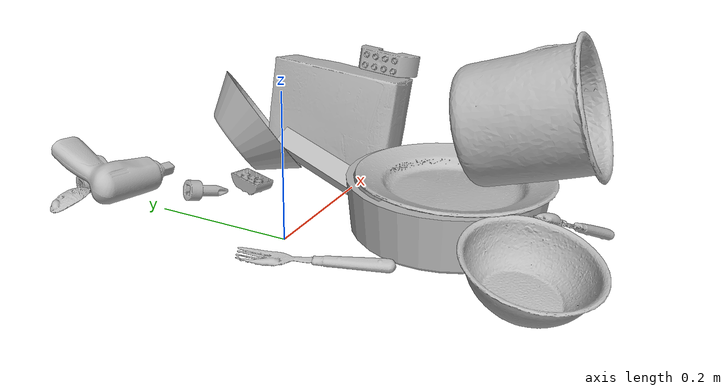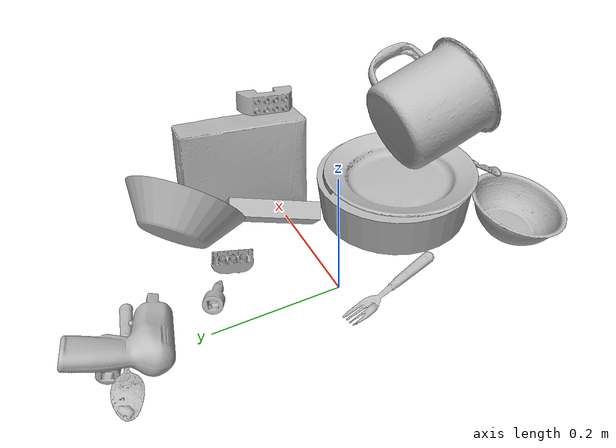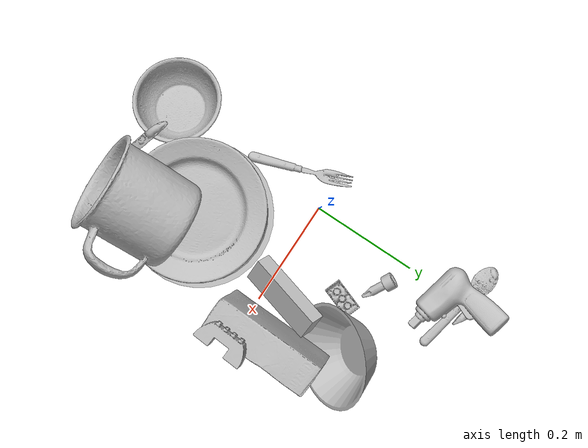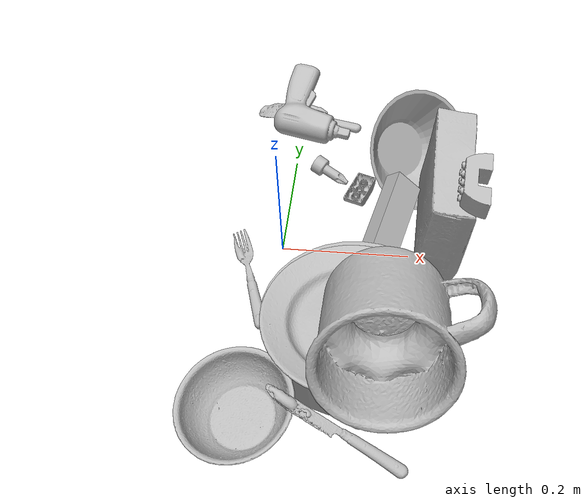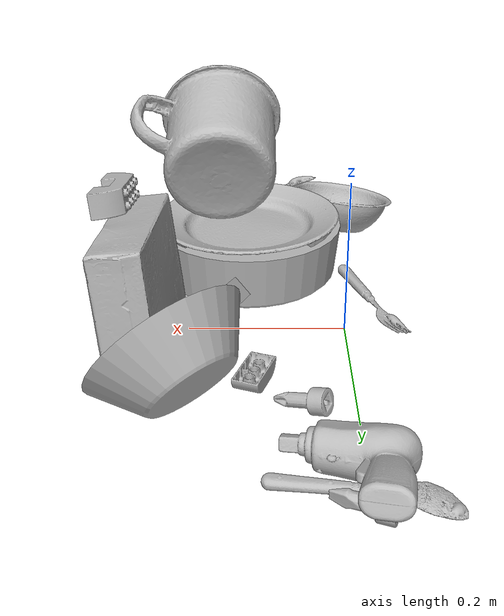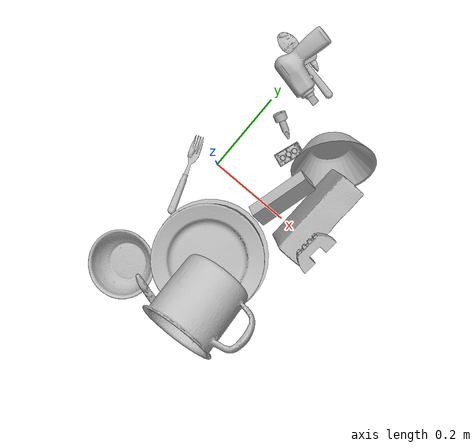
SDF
<sdf version="1.4">
  <world name="default">
    <light name="light1" type="point">
      <pose>0 0 1 0 0 0</pose>
      <diffuse>3 3 3 1</diffuse>
      <specular>3 3 3 1</specular>
    </light>
    <light name="light2" type="point">
      <pose>0 0.5 2 0 0 0</pose>
      <diffuse>1 1 1 1</diffuse>
      <specular>1 1 1 1</specular>
    </light>
    <light name="light3" type="point">
      <pose>0 0.5 2 0 0 0</pose>
      <diffuse>3 3 3 1</diffuse>
      <specular>3 3 3 1</specular>
    </light>
    <scene>
      <ambient>0.7 0.7 0.7</ambient>
    </scene>
    <model name="plate1">
      <link name="link_plate1">
        <collision name="default">
          <geometry>
            <mesh>
              <uri>model://plate/collision_meshes/collision.obj</uri>
              <scale>1.0 1.0 1.0</scale>
            </mesh>
          </geometry>
          <surface>
            <friction>
              <ode>
                <mu>0.5</mu>
                <mu2>0.5</mu2>
              </ode>
            </friction>
          <contact>
        <ode>
            <max_vel>0</max_vel>
            <min_depth>0.0001</min_depth>
            <kp>1e8</kp>
        </ode>
    </contact></surface>
        </collision>
        <visual name="default">
          <geometry>
            <mesh>
              <uri>model://plate/visual_meshes/visual.dae</uri>
              <scale>1.0 1.0 1.0</scale>
            </mesh>
          </geometry>
        </visual>
        <inertial>
          <mass>0.2627958059310913</mass>
          <pose>-0.0006044646725058556 0.00027825895813293755 -0.0010561998933553696 0.0022187866930069794 -0.0032254842153956703 0.4526099982878722</pose>
          <inertia>
            <ixx>0.0012293643</ixx>
            <iyy>0.0012176059</iyy>
            <izz>0.0024044532</izz>
            <ixy>0</ixy>
            <ixz>0</ixz>
            <iyz>0</iyz>
          </inertia>
        </inertial>
      </link>
      <pose>0.12672537565231323 -0.18346275389194489 0.071151964366436 -0.01791437135061062 0.012229797140249592 -0.7860718763504662</pose>
    </model>
    <model name="plate2">
      <link name="link_plate2">
        <collision name="default">
          <geometry>
            <mesh>
              <uri>model://pan_tefal/collision_meshes/collision.obj</uri>
              <scale>1.0 1.0 1.0</scale>
            </mesh>
          </geometry>
          <surface>
            <friction>
              <ode>
                <mu>0.5</mu>
                <mu2>0.5</mu2>
              </ode>
            </friction>
          <contact>
        <ode>
            <max_vel>0</max_vel>
            <min_depth>0.0001</min_depth>
            <kp>1e8</kp>
        </ode>
    </contact></surface>
        </collision>
        <visual name="default">
          <geometry>
            <mesh>
              <uri>model://pan_tefal/visual_meshes/visual.dae</uri>
              <scale>1.0 1.0 1.0</scale>
            </mesh>
          </geometry>
        </visual>
        <inertial>
          <mass>1.5012701749801636</mass>
          <pose>-0.00018001999706029892 3.279017983004451e-05 -0.00851493701338768 0.0008190300793188327 -0.0003301349064117064 -0.3318640955526003</pose>
          <inertia>
            <ixx>0.010363197</ixx>
            <iyy>0.010430007</iyy>
            <izz>0.019076647</izz>
            <ixy>0</ixy>
            <ixz>0</ixz>
            <iyz>0</iyz>
          </inertia>
        </inertial>
      </link>
      <pose>0.12731607258319855 -0.17306730151176453 0.038051068782806396 -9.237978626204412e-06 -3.934545256849642e-06 -0.947245570739394</pose>
    </model>
    <model name="bowl1">
      <link name="link_bowl1">
        <collision name="default">
          <geometry>
            <mesh>
              <uri>model://bowl_a/collision_meshes/collision.obj</uri>
              <scale>1.0 1.0 1.0</scale>
            </mesh>
          </geometry>
          <surface>
            <friction>
              <ode>
                <mu>0.5</mu>
                <mu2>0.5</mu2>
              </ode>
            </friction>
          <contact>
        <ode>
            <max_vel>0</max_vel>
            <min_depth>0.0001</min_depth>
            <kp>1e8</kp>
        </ode>
    </contact></surface>
        </collision>
        <visual name="default">
          <geometry>
            <mesh>
              <uri>model://bowl_a/visual_meshes/visual.dae</uri>
              <scale>1.0 1.0 1.0</scale>
            </mesh>
          </geometry>
        </visual>
        <inertial>
          <mass>0.25230005383491516</mass>
          <pose>0.0002786753175314516 4.731153603643179e-05 -0.001376529224216938 -0.000980537182568925 -0.0010938202432478224 -0.19123453155183487</pose>
          <inertia>
            <ixx>0.00071831</ixx>
            <iyy>0.0007227198</iyy>
            <izz>0.0012775414</izz>
            <ixy>0</ixy>
            <ixz>0</ixz>
            <iyz>0</iyz>
          </inertia>
        </inertial>
      </link>
      <pose>0.19357722997665405 0.18115124106407166 0.0640617161989212 0.7670285736862258 -0.6503039305871113 1.3161822176302032</pose>
    </model>
    <model name="bowl2">
      <link name="link_bowl2">
        <collision name="default">
          <geometry>
            <mesh>
              <uri>model://bowl/collision_meshes/collision.obj</uri>
              <scale>1.0 1.0 1.0</scale>
            </mesh>
          </geometry>
          <surface>
            <friction>
              <ode>
                <mu>0.5</mu>
                <mu2>0.5</mu2>
              </ode>
            </friction>
          <contact>
        <ode>
            <max_vel>0</max_vel>
            <min_depth>0.0001</min_depth>
            <kp>1e8</kp>
        </ode>
    </contact></surface>
        </collision>
        <visual name="default">
          <geometry>
            <mesh>
              <uri>model://bowl/visual_meshes/visual.dae</uri>
              <scale>1.0 1.0 1.0</scale>
            </mesh>
          </geometry>
        </visual>
        <inertial>
          <mass>0.09131127595901489</mass>
          <pose>0.00020444947585929185 -0.0010302107548341155 -0.0008042654953896999 -0.01576413996306862 0.014546728377416086 0.7140363947853973</pose>
          <inertia>
            <ixx>0.00020974927</ixx>
            <iyy>0.00020506265</iyy>
            <izz>0.00035287044</izz>
            <ixy>0</ixy>
            <ixz>0</ixz>
            <iyz>0</iyz>
          </inertia>
        </inertial>
      </link>
      <pose>-0.015955060720443726 -0.31661078333854675 0.0366506464779377 -0.20280331749307043 -0.0752187005251201 2.0994034555214</pose>
    </model>
    <model name="silverware1">
      <link name="link_silverware1">
        <collision name="default">
          <geometry>
            <mesh>
              <uri>model://knife/collision_meshes/collision.obj</uri>
              <scale>1.0 1.0 1.0</scale>
            </mesh>
          </geometry>
          <surface>
            <friction>
              <ode>
                <mu>0.5</mu>
                <mu2>0.5</mu2>
              </ode>
            </friction>
          <contact>
        <ode>
            <max_vel>0</max_vel>
            <min_depth>0.0001</min_depth>
            <kp>1e8</kp>
        </ode>
    </contact></surface>
        </collision>
        <visual name="default">
          <geometry>
            <mesh>
              <uri>model://knife/visual_meshes/visual.dae</uri>
              <scale>1.0 1.0 1.0</scale>
            </mesh>
          </geometry>
        </visual>
        <inertial>
          <mass>0.033491987735033035</mass>
          <pose>-0.023785259574651718 0.00152751209679991 5.062024501967244e-05 0.07305195921562309 0.017248415702697233 -0.007409822782391368</pose>
          <inertia>
            <ixx>9.5063825e-07</ixx>
            <iyy>0.00012867076</iyy>
            <izz>0.00012897696</izz>
            <ixy>0</ixy>
            <ixz>0</ixz>
            <iyz>0</iyz>
          </inertia>
        </inertial>
      </link>
      <pose>0.11571027338504791 -0.3432752192020416 0.04882434383034706 3.070447836468686 -0.42166776571482706 2.826977538366023</pose>
    </model>
    <model name="box1">
      <link name="link_box1">
        <collision name="default">
          <geometry>
            <mesh>
              <uri>model://cracker_box/collision_meshes/collision.obj</uri>
              <scale>1.0 1.0 1.0</scale>
            </mesh>
          </geometry>
          <surface>
            <friction>
              <ode>
                <mu>0.5</mu>
                <mu2>0.5</mu2>
              </ode>
            </friction>
          <contact>
        <ode>
            <max_vel>0</max_vel>
            <min_depth>0.0001</min_depth>
            <kp>1e8</kp>
        </ode>
    </contact></surface>
        </collision>
        <visual name="default">
          <geometry>
            <mesh>
              <uri>model://cracker_box/visual_meshes/visual.dae</uri>
              <scale>1.0 1.0 1.0</scale>
            </mesh>
          </geometry>
        </visual>
        <inertial>
          <mass>3.401942253112793</mass>
          <pose>0.0009464150061830878 0.00025434247800149024 -0.001702953246422112 -0.00031620765582640923 -0.011106486806186075 0.0025467954673401043</pose>
          <inertia>
            <ixx>0.008653021</ixx>
            <iyy>0.014287839</iyy>
            <izz>0.020390058</izz>
            <ixy>0</ixy>
            <ixz>0</ixz>
            <iyz>0</iyz>
          </inertia>
        </inertial>
      </link>
      <pose>0.2516811192035675 0.05289115011692047 0.09037639945745468 -1.6860191488520802 0.07311362632773998 -1.6096909812655236</pose>
    </model>
    <model name="box2">
      <link name="link_box2">
        <collision name="default">
          <geometry>
            <mesh>
              <uri>model://jenga/collision_meshes/collision.obj</uri>
              <scale>1.0 1.0 1.0</scale>
            </mesh>
          </geometry>
          <surface>
            <friction>
              <ode>
                <mu>0.5</mu>
                <mu2>0.5</mu2>
              </ode>
            </friction>
          <contact>
        <ode>
            <max_vel>0</max_vel>
            <min_depth>0.0001</min_depth>
            <kp>1e8</kp>
        </ode>
    </contact></surface>
        </collision>
        <visual name="default">
          <geometry>
            <mesh>
              <uri>model://jenga/visual_meshes/visual.dae</uri>
              <scale>1.0 1.0 1.0</scale>
            </mesh>
          </geometry>
        </visual>
        <inertial>
          <mass>0.15917322039604187</mass>
          <pose>-2.502856091268768e-07 -0.00010250010382151231 -4.0923405322246253e-05 0.0 -7.34215461761844e-07 0.0</pose>
          <inertia>
            <ixx>4.4047094e-05</ixx>
            <iyy>0.0002984619</iyy>
            <izz>0.00031863348</izz>
            <ixy>0</ixy>
            <ixz>0</ixz>
            <iyz>0</iyz>
          </inertia>
        </inertial>
      </link>
      <pose>0.16775253415107727 0.035546544939279556 0.04374735802412033 -2.337149196937281 -0.22723273677755293 1.3149515263178178</pose>
    </model>
    <model name="cup1">
      <link name="link_cup1">
        <collision name="default">
          <geometry>
            <mesh>
              <uri>model://mug/collision_meshes/collision.obj</uri>
              <scale>2.0 2.0 2.0</scale>
            </mesh>
          </geometry>
          <surface>
            <friction>
              <ode>
                <mu>0.5</mu>
                <mu2>0.5</mu2>
              </ode>
            </friction>
          <contact>
        <ode>
            <max_vel>0</max_vel>
            <min_depth>0.0001</min_depth>
            <kp>1e8</kp>
        </ode>
    </contact></surface>
        </collision>
        <visual name="default">
          <geometry>
            <mesh>
              <uri>model://mug/visual_meshes/visual.dae</uri>
              <scale>2.0 2.0 2.0</scale>
            </mesh>
          </geometry>
        </visual>
        <inertial>
          <mass>1.8939067125320435</mass>
          <pose>0.019143342971801758 0.0016286505851894617 -0.02189466543495655 -0.12983139039190478 0.08737723243087561 0.05507286357129759</pose>
          <inertia>
            <ixx>0.0075250226</ixx>
            <iyy>0.008405008</iyy>
            <izz>0.009720505</izz>
            <ixy>0</ixy>
            <ixz>0</ixz>
            <iyz>0</iyz>
          </inertia>
        </inertial>
      </link>
      <pose>0.19104765355587006 -0.259406715631485 0.17038509249687195 -1.248371800984435 0.38950567369405475 -2.985134024669418</pose>
    </model>
    <model name="silverware2">
      <link name="link_silverware2">
        <collision name="default">
          <geometry>
            <mesh>
              <uri>model://fork/collision_meshes/collision.obj</uri>
              <scale>1.0 1.0 1.0</scale>
            </mesh>
          </geometry>
          <surface>
            <friction>
              <ode>
                <mu>0.5</mu>
                <mu2>0.5</mu2>
              </ode>
            </friction>
          <contact>
        <ode>
            <max_vel>0</max_vel>
            <min_depth>0.0001</min_depth>
            <kp>1e8</kp>
        </ode>
    </contact></surface>
        </collision>
        <visual name="default">
          <geometry>
            <mesh>
              <uri>model://fork/visual_meshes/visual.dae</uri>
              <scale>1.0 1.0 1.0</scale>
            </mesh>
          </geometry>
        </visual>
        <inertial>
          <mass>0.01107261423021555</mass>
          <pose>-0.02957005240023136 0.00046588238910771906 0.0003218861820641905 -0.01355183639158028 -0.010977839693189282 0.014453902572364752</pose>
          <inertia>
            <ixx>3.8815773e-07</ixx>
            <iyy>2.8907412e-05</iyy>
            <izz>2.9081024e-05</izz>
            <ixy>0</ixy>
            <ixz>0</ixz>
            <iyz>0</iyz>
          </inertia>
        </inertial>
      </link>
      <pose>-0.04053258150815964 -0.06828885525465012 0.005695383995771408 -0.17728559167712926 0.025462852472933662 1.8933954890443236</pose>
    </model>
    <model name="silverware3">
      <link name="link_silverware3">
        <collision name="default">
          <geometry>
            <mesh>
              <uri>model://spoon/collision_meshes/collision.obj</uri>
              <scale>1.0 1.0 1.0</scale>
            </mesh>
          </geometry>
          <surface>
            <friction>
              <ode>
                <mu>0.5</mu>
                <mu2>0.5</mu2>
              </ode>
            </friction>
          <contact>
        <ode>
            <max_vel>0</max_vel>
            <min_depth>0.0001</min_depth>
            <kp>1e8</kp>
        </ode>
    </contact></surface>
        </collision>
        <visual name="default">
          <geometry>
            <mesh>
              <uri>model://spoon/visual_meshes/visual.dae</uri>
              <scale>1.0 1.0 1.0</scale>
            </mesh>
          </geometry>
        </visual>
        <inertial>
          <mass>0.03720218688249588</mass>
          <pose>-0.005526323337107897 -0.00160341733135283 -0.0007271655485965312 0.035216710753312216 -0.03906584126265578 0.006150608185168733</pose>
          <inertia>
            <ixx>2.0692462e-06</ixx>
            <iyy>0.00014155307</iyy>
            <izz>0.00014257352</izz>
            <ixy>0</ixy>
            <ixz>0</ixz>
            <iyz>0</iyz>
          </inertia>
        </inertial>
      </link>
      <pose>0.008705761283636093 0.31573575735092163 0.010133743286132812 3.104942533874375 -0.06197685599131799 2.9454983867904647</pose>
    </model>
    <model name="toy1">
      <link name="link_toy1">
        <collision name="default">
          <geometry>
            <mesh>
              <uri>model://e_toy_airplane/collision_meshes/collision.obj</uri>
              <scale>1.0 1.0 1.0</scale>
            </mesh>
          </geometry>
          <surface>
            <friction>
              <ode>
                <mu>0.5</mu>
                <mu2>0.5</mu2>
              </ode>
            </friction>
          <contact>
        <ode>
            <max_vel>0</max_vel>
            <min_depth>0.0001</min_depth>
            <kp>1e8</kp>
        </ode>
    </contact></surface>
        </collision>
        <visual name="default">
          <geometry>
            <mesh>
              <uri>model://e_toy_airplane/visual_meshes/visual.dae</uri>
              <scale>1.0 1.0 1.0</scale>
            </mesh>
          </geometry>
        </visual>
        <inertial>
          <mass>0.02491888962686062</mass>
          <pose>0.00011740486661437899 -2.248287455586251e-05 -0.011187204159796238 0.00551850201937057 0.009228289896812953 0.1504152046419029</pose>
          <inertia>
            <ixx>7.60553e-06</ixx>
            <iyy>7.52773e-06</iyy>
            <izz>2.2857607e-06</izz>
            <ixy>0</ixy>
            <ixz>0</ixz>
            <iyz>0</iyz>
          </inertia>
        </inertial>
      </link>
      <pose>0.011234674602746964 0.3326357901096344 0.014625774696469307 -1.601015889529547 -0.20991908415371224 -1.911020063695973</pose>
    </model>
    <model name="toy2">
      <link name="link_toy2">
        <collision name="default">
          <geometry>
            <mesh>
              <uri>model://e_lego_duplo/collision_meshes/collision.obj</uri>
              <scale>1.0 1.0 1.0</scale>
            </mesh>
          </geometry>
          <surface>
            <friction>
              <ode>
                <mu>0.5</mu>
                <mu2>0.5</mu2>
              </ode>
            </friction>
          <contact>
        <ode>
            <max_vel>0</max_vel>
            <min_depth>0.0001</min_depth>
            <kp>1e8</kp>
        </ode>
    </contact></surface>
        </collision>
        <visual name="default">
          <geometry>
            <mesh>
              <uri>model://e_lego_duplo/visual_meshes/visual.dae</uri>
              <scale>1.0 1.0 1.0</scale>
            </mesh>
          </geometry>
        </visual>
        <inertial>
          <mass>0.08635181933641434</mass>
          <pose>0.00032560451654717326 0.0002348542184336111 0.0019521444337442517 -0.022567902749969417 -6.824781923482006e-05 -0.00762515629770681</pose>
          <inertia>
            <ixx>1.8007207e-05</ixx>
            <iyy>7.390619e-05</iyy>
            <izz>7.1969785e-05</izz>
            <ixy>0</ixy>
            <ixz>0</ixz>
            <iyz>0</iyz>
          </inertia>
        </inertial>
      </link>
      <pose>0.28325632214546204 -0.01201402023434639 0.18079522252082825 -1.4551616254418687 -0.07978736794785493 1.5021447945738786</pose>
    </model>
    <model name="toy3">
      <link name="link_toy3">
        <collision name="default">
          <geometry>
            <mesh>
              <uri>model://d_toy_airplane/collision_meshes/collision.obj</uri>
              <scale>1.0 1.0 1.0</scale>
            </mesh>
          </geometry>
          <surface>
            <friction>
              <ode>
                <mu>0.5</mu>
                <mu2>0.5</mu2>
              </ode>
            </friction>
          <contact>
        <ode>
            <max_vel>0</max_vel>
            <min_depth>0.0001</min_depth>
            <kp>1e8</kp>
        </ode>
    </contact></surface>
        </collision>
        <visual name="default">
          <geometry>
            <mesh>
              <uri>model://d_toy_airplane/visual_meshes/visual.dae</uri>
              <scale>1.0 1.0 1.0</scale>
            </mesh>
          </geometry>
        </visual>
        <inertial>
          <mass>0.01398532185703516</mass>
          <pose>9.410311031388119e-05 -5.809316644445062e-05 -0.011728093959391117 0.00026700916858413164 0.004678987951971881 0.5194708538811167</pose>
          <inertia>
            <ixx>4.1925277e-06</ixx>
            <iyy>4.1956896e-06</iyy>
            <izz>1.2657512e-06</izz>
            <ixy>0</ixy>
            <ixz>0</ixz>
            <iyz>0</iyz>
          </inertia>
        </inertial>
      </link>
      <pose>0.06265103816986084 0.17066916823387146 0.011069145984947681 -1.8202264471198162 0.03735468652814366 -2.0540566532361355</pose>
    </model>
    <model name="toy4">
      <link name="link_toy4">
        <collision name="default">
          <geometry>
            <mesh>
              <uri>model://b_toy_airplane/collision_meshes/collision.obj</uri>
              <scale>1.0 1.0 1.0</scale>
            </mesh>
          </geometry>
          <surface>
            <friction>
              <ode>
                <mu>0.5</mu>
                <mu2>0.5</mu2>
              </ode>
            </friction>
          <contact>
        <ode>
            <max_vel>0</max_vel>
            <min_depth>0.0001</min_depth>
            <kp>1e8</kp>
        </ode>
    </contact></surface>
        </collision>
        <visual name="default">
          <geometry>
            <mesh>
              <uri>model://b_toy_airplane/visual_meshes/visual.dae</uri>
              <scale>1.0 1.0 1.0</scale>
            </mesh>
          </geometry>
        </visual>
        <inertial>
          <mass>0.39888885617256165</mass>
          <pose>0.00508136348798871 0.0040155863389372826 0.009543065913021564 -0.04001810285123905 -0.040221831504284974 -0.560150355465512</pose>
          <inertia>
            <ixx>0.00074054446</ixx>
            <iyy>0.00029600295</iyy>
            <izz>0.00092131115</izz>
            <ixy>0</ixy>
            <ixz>0</ixz>
            <iyz>0</iyz>
          </inertia>
        </inertial>
      </link>
      <pose>-0.001296146074309945 0.3009800612926483 0.04567427933216095 -2.779372488884627 0.02786823671042887 -0.2217377646078565</pose>
    </model>
    <model name="toy5">
      <link name="link_toy5">
        <collision name="default">
          <geometry>
            <mesh>
              <uri>model://a_lego_duplo/collision_meshes/collision.obj</uri>
              <scale>1.0 1.0 1.0</scale>
            </mesh>
          </geometry>
          <surface>
            <friction>
              <ode>
                <mu>0.5</mu>
                <mu2>0.5</mu2>
              </ode>
            </friction>
          <contact>
        <ode>
            <max_vel>0</max_vel>
            <min_depth>0.0001</min_depth>
            <kp>1e8</kp>
        </ode>
    </contact></surface>
        </collision>
        <visual name="default">
          <geometry>
            <mesh>
              <uri>model://a_lego_duplo/visual_meshes/visual.dae</uri>
              <scale>1.0 1.0 1.0</scale>
            </mesh>
          </geometry>
        </visual>
        <inertial>
          <mass>0.014756478369235992</mass>
          <pose>-0.00011337623436702415 0.00018517495482228696 0.00036926049506291747 -0.01411700810413075 -0.00012565743579302476 6.142605902116464e-05</pose>
          <inertia>
            <ixx>1.8918981e-06</ixx>
            <iyy>4.238266e-06</iyy>
            <izz>5.250033e-06</izz>
            <ixy>0</ixy>
            <ixz>0</ixz>
            <iyz>0</iyz>
          </inertia>
        </inertial>
      </link>
      <pose>0.11445838212966919 0.12637314200401306 0.012124704197049141 -3.1413073849839344 -0.015582319194958059 1.2240611127750165</pose>
    </model>
  <physics type="ode">
      <max_contacts>50</max_contacts>
      <ode>
        <solver>
          <type>quick</type>
          <iters>75</iters>
        </solver>
        <constraints>
          <contact_max_correcting_vel>0</contact_max_correcting_vel>
          <contact_surface_layer>0</contact_surface_layer>
        </constraints>
      </ode>
    </physics></world>
</sdf>
